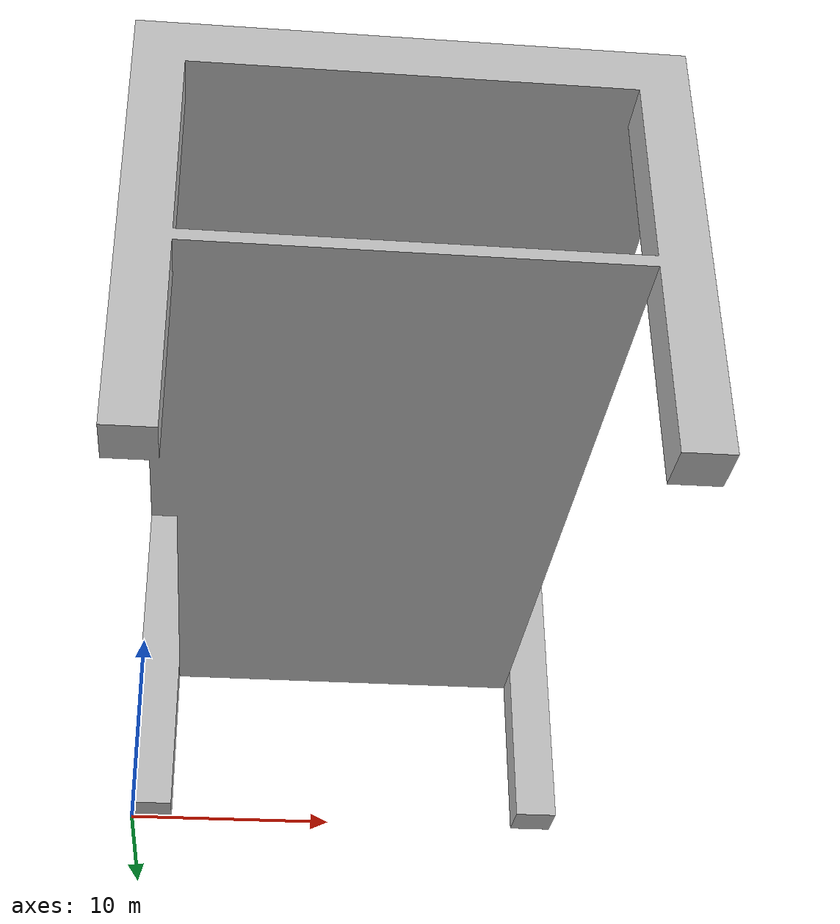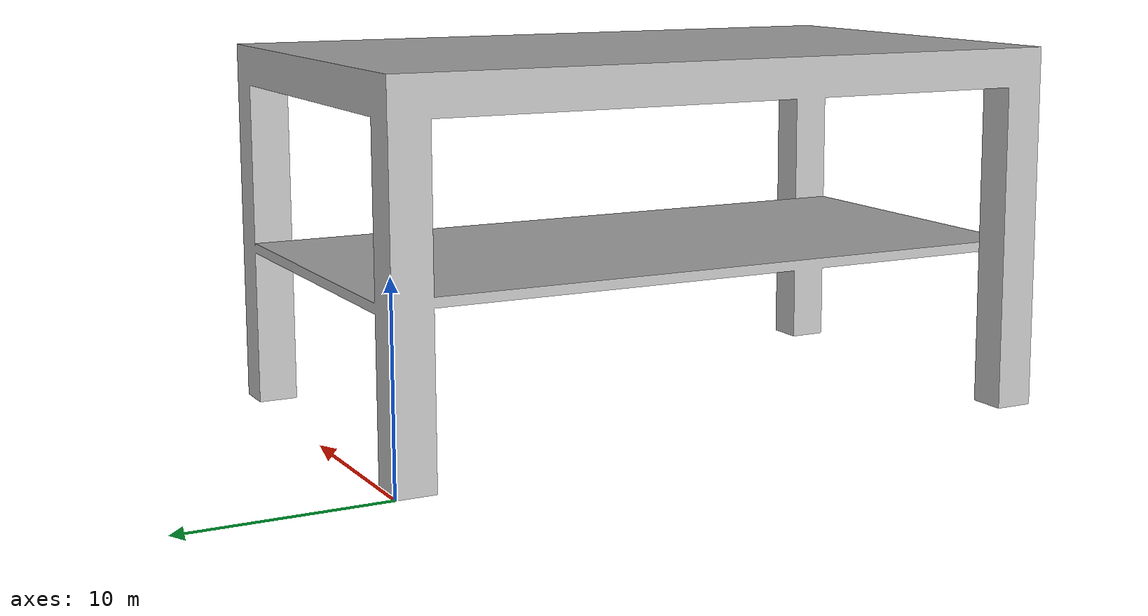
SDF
<?xml version="1.0" ?>
<sdf version="1.5">
  <model name="lack_coffee_table">
    <static>true</static>
    <link name="link">
      <collision name="table">
        <pose>0 0 0.02 0 0 0</pose>
        <geometry>
          <box>
            <size>901.7 546.1 476.25</size>
          </box>
        </geometry>
      </collision>

      <visual name="visual">
        <geometry>
          <mesh>
            <uri>model://lack_coffee_table/meshes/lack_coffee_table.stl</uri>
          </mesh>
        </geometry>
      </visual>
    </link>
  </model>
</sdf>
